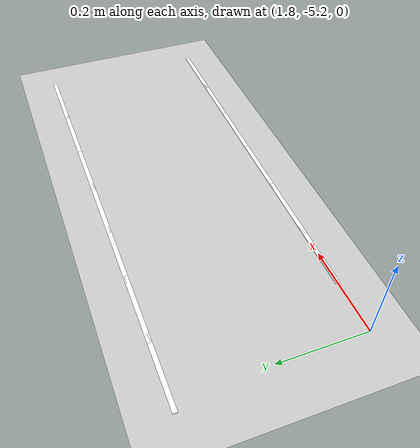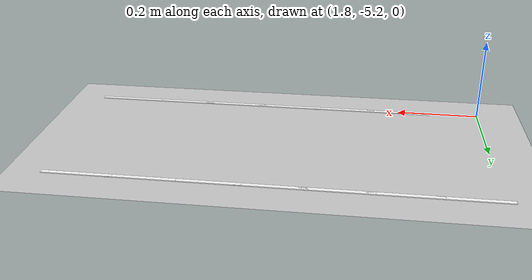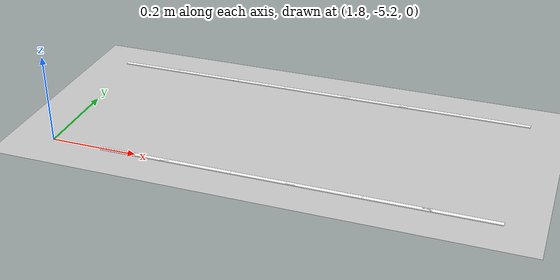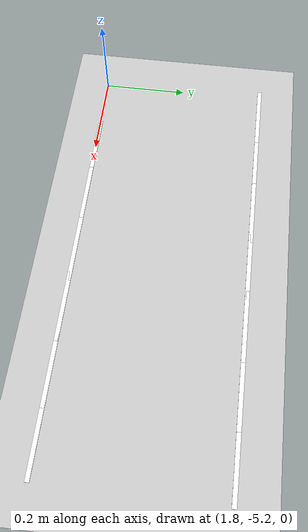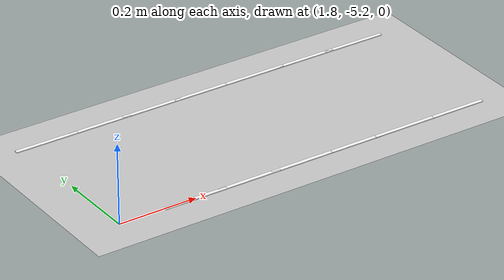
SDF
<sdf version="1.7">
 <world name="default">
  <model name="ground_plane">
   <static>1</static>
   <link name="link">
    <collision name="collision">
     <geometry><plane><normal>0 0 1</normal><size>100 100</size></plane></geometry>
     <surface>
      <contact><collide_bitmask>65535</collide_bitmask></contact>
      <friction><ode><mu>100</mu><mu2>50</mu2></ode></friction>
     </surface>
    </collision>
    <visual name="visual">
     <cast_shadows>0</cast_shadows>
     <geometry><plane><normal>0 0 1</normal><size>100 100</size></plane></geometry>
     <material>
      <script><uri>file://media/materials/scripts/gazebo.material</uri><name>Gazebo/Grey</name></script>
     </material>
    </visual>
   </link>
  </model>
  <model name="lane_line_left_37">
   <static>1</static>
   <link name="link">
    <pose>0 0 -0.004 0 -0 0</pose>
    <visual name="visual">
     <geometry><box><size>0.1629 0.01 0.01</size></box></geometry>
     <material><ambient>1 1 1 1</ambient><diffuse>1 1 1 1</diffuse></material>
    </visual>
    <collision name="collision"><geometry><box><size>0.1629 0.01 0.01</size></box></geometry></collision>
   </link>
   <pose>1.85714 -4.8 0 0 -0 0</pose>
  </model>
  <model name="lane_line_left_38">
   <static>1</static>
   <link name="link">
    <pose>0 0 -0.004 0 -0 0</pose>
    <visual name="visual">
     <geometry><box><size>0.1629 0.01 0.01</size></box></geometry>
     <material><ambient>1 1 1 1</ambient><diffuse>1 1 1 1</diffuse></material>
    </visual>
    <collision name="collision"><geometry><box><size>0.1629 0.01 0.01</size></box></geometry></collision>
   </link>
   <pose>2 -4.8 0 0 -0 0</pose>
  </model>
  <model name="lane_line_right_38">
   <static>1</static>
   <link name="link">
    <pose>0 0 -0.004 0 -0 0</pose>
    <visual name="visual">
     <geometry><box><size>0.1629 0.01 0.01</size></box></geometry>
     <material><ambient>1 1 1 1</ambient><diffuse>1 1 1 1</diffuse></material>
    </visual>
    <collision name="collision"><geometry><box><size>0.1629 0.01 0.01</size></box></geometry></collision>
   </link>
   <pose>2 -5.2 0 0 -0 0</pose>
  </model>
  <model name="lane_line_left_39">
   <static>1</static>
   <link name="link">
    <pose>0 0 -0.004 0 -0 0</pose>
    <visual name="visual">
     <geometry><box><size>0.1629 0.01 0.01</size></box></geometry>
     <material><ambient>1 1 1 1</ambient><diffuse>1 1 1 1</diffuse></material>
    </visual>
    <collision name="collision"><geometry><box><size>0.1629 0.01 0.01</size></box></geometry></collision>
   </link>
   <pose>2.14286 -4.8 0 0 -0 0</pose>
  </model>
  <model name="lane_line_right_39">
   <static>1</static>
   <link name="link">
    <pose>0 0 -0.004 0 -0 0</pose>
    <visual name="visual">
     <geometry><box><size>0.1629 0.01 0.01</size></box></geometry>
     <material><ambient>1 1 1 1</ambient><diffuse>1 1 1 1</diffuse></material>
    </visual>
    <collision name="collision"><geometry><box><size>0.1629 0.01 0.01</size></box></geometry></collision>
   </link>
   <pose>2.14286 -5.2 0 0 -0 0</pose>
  </model>
  <model name="lane_line_left_40">
   <static>1</static>
   <link name="link">
    <pose>0 0 -0.004 0 -0 0</pose>
    <visual name="visual">
     <geometry><box><size>0.1629 0.01 0.01</size></box></geometry>
     <material><ambient>1 1 1 1</ambient><diffuse>1 1 1 1</diffuse></material>
    </visual>
    <collision name="collision"><geometry><box><size>0.1629 0.01 0.01</size></box></geometry></collision>
   </link>
   <pose>2.28571 -4.8 0 0 -0 0</pose>
  </model>
  <model name="lane_line_right_40">
   <static>1</static>
   <link name="link">
    <pose>0 0 -0.004 0 -0 0</pose>
    <visual name="visual">
     <geometry><box><size>0.1629 0.01 0.01</size></box></geometry>
     <material><ambient>1 1 1 1</ambient><diffuse>1 1 1 1</diffuse></material>
    </visual>
    <collision name="collision"><geometry><box><size>0.1629 0.01 0.01</size></box></geometry></collision>
   </link>
   <pose>2.28571 -5.2 0 0 -0 0</pose>
  </model>
  <model name="lane_line_left_41">
   <static>1</static>
   <link name="link">
    <pose>0 0 -0.004 0 -0 0</pose>
    <visual name="visual">
     <geometry><box><size>0.1629 0.01 0.01</size></box></geometry>
     <material><ambient>1 1 1 1</ambient><diffuse>1 1 1 1</diffuse></material>
    </visual>
    <collision name="collision"><geometry><box><size>0.1629 0.01 0.01</size></box></geometry></collision>
   </link>
   <pose>2.42857 -4.8 0 0 -0 0</pose>
  </model>
  <model name="lane_line_right_41">
   <static>1</static>
   <link name="link">
    <pose>0 0 -0.004 0 -0 0</pose>
    <visual name="visual">
     <geometry><box><size>0.1629 0.01 0.01</size></box></geometry>
     <material><ambient>1 1 1 1</ambient><diffuse>1 1 1 1</diffuse></material>
    </visual>
    <collision name="collision"><geometry><box><size>0.1629 0.01 0.01</size></box></geometry></collision>
   </link>
   <pose>2.42857 -5.2 0 0 -0 0</pose>
  </model>
  <model name="lane_line_left_42">
   <static>1</static>
   <link name="link">
    <pose>0 0 -0.004 0 -0 0</pose>
    <visual name="visual">
     <geometry><box><size>0.1629 0.01 0.01</size></box></geometry>
     <material><ambient>1 1 1 1</ambient><diffuse>1 1 1 1</diffuse></material>
    </visual>
    <collision name="collision"><geometry><box><size>0.1629 0.01 0.01</size></box></geometry></collision>
   </link>
   <pose>2.57143 -4.8 0 0 -0 0</pose>
  </model>
  <model name="lane_line_right_42">
   <static>1</static>
   <link name="link">
    <pose>0 0 -0.004 0 -0 0</pose>
    <visual name="visual">
     <geometry><box><size>0.1629 0.01 0.01</size></box></geometry>
     <material><ambient>1 1 1 1</ambient><diffuse>1 1 1 1</diffuse></material>
    </visual>
    <collision name="collision"><geometry><box><size>0.1629 0.01 0.01</size></box></geometry></collision>
   </link>
   <pose>2.57143 -5.2 0 0 -0 0</pose>
  </model>
  <model name="lane_line_left_43">
   <static>1</static>
   <link name="link">
    <pose>0 0 -0.004 0 -0 0</pose>
    <visual name="visual">
     <geometry><box><size>0.1629 0.01 0.01</size></box></geometry>
     <material><ambient>1 1 1 1</ambient><diffuse>1 1 1 1</diffuse></material>
    </visual>
    <collision name="collision"><geometry><box><size>0.1629 0.01 0.01</size></box></geometry></collision>
   </link>
   <pose>2.71429 -4.8 0 0 -0 0</pose>
  </model>
  <model name="lane_line_right_43">
   <static>1</static>
   <link name="link">
    <pose>0 0 -0.004 0 -0 0</pose>
    <visual name="visual">
     <geometry><box><size>0.1629 0.01 0.01</size></box></geometry>
     <material><ambient>1 1 1 1</ambient><diffuse>1 1 1 1</diffuse></material>
    </visual>
    <collision name="collision"><geometry><box><size>0.1629 0.01 0.01</size></box></geometry></collision>
   </link>
   <pose>2.71429 -5.2 0 0 -0 0</pose>
  </model>
 </world>
</sdf>
